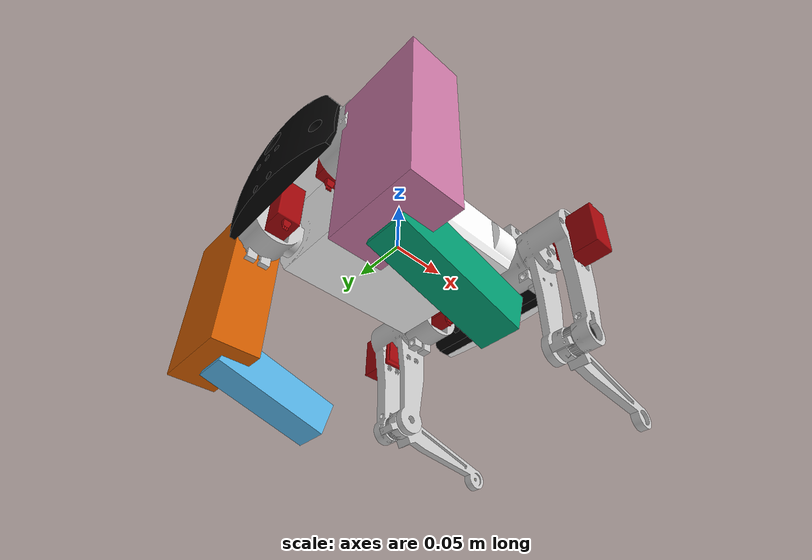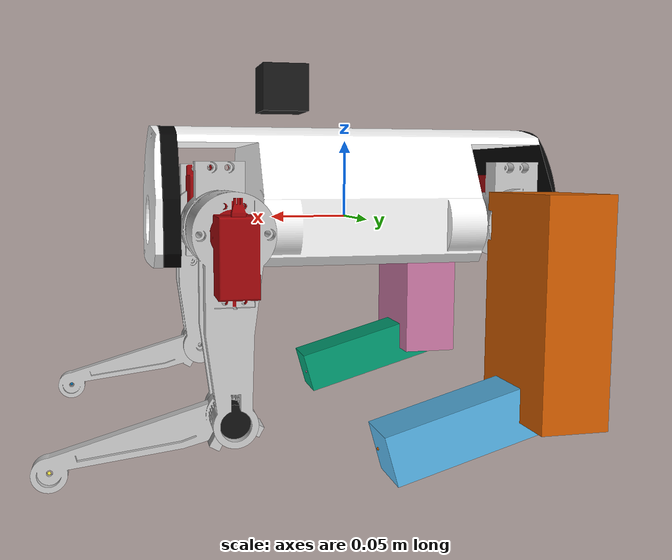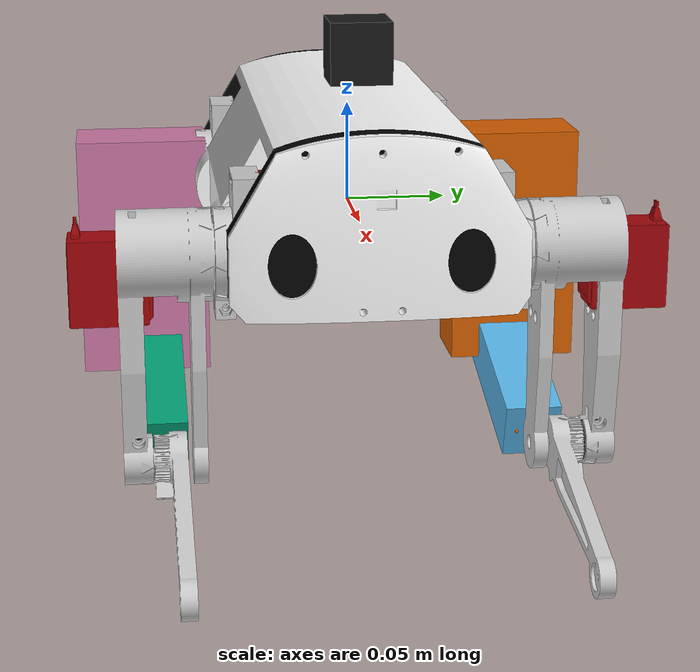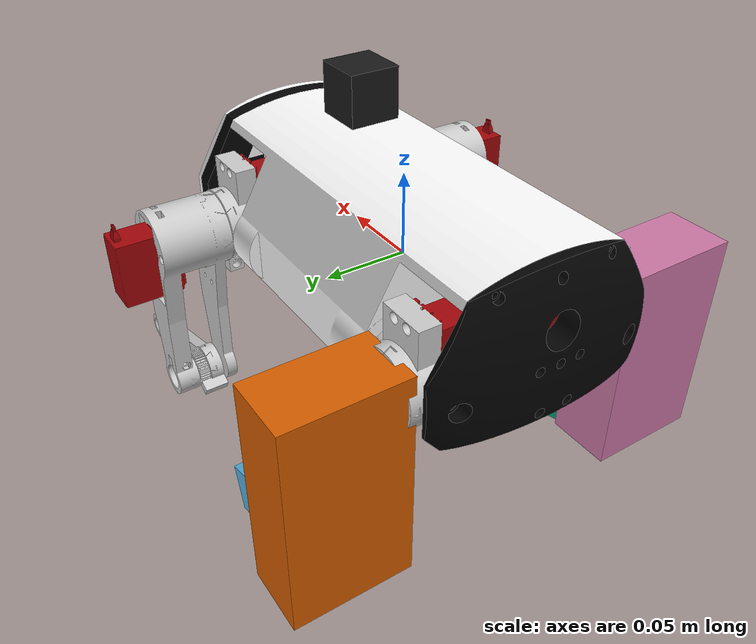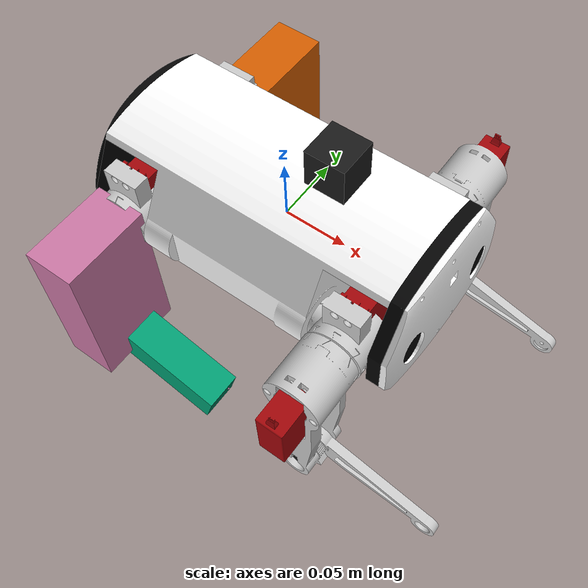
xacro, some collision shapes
<?xml version="1.0"?>

<robot name="pavlov_mini" xmlns:xacro="http://ros.org/wiki/xacro">

  <xacro:arg name="is_ignition" default="true"/>
  <!-- Simulation-only tweak: tilt camera down/up (radians). Negative looks down. -->
  <xacro:arg name="camera_sensor_pitch" default="-0.15"/>

  <xacro:include filename="$(find pavlov_description)/urdf/pavlov_mini_ros2_control.xacro" />

  <link name="base_link">
    <visual>
      <geometry>
        <mesh filename= "package://pavlov_description/meshes/base.dae"/>
      </geometry>
    </visual>
    <inertial>
      <origin xyz="-0.000492 0.000002 0.014305" rpy="0 0 0"/>
      <mass value="2.05964"/>
      <inertia
        ixx="0.00372"
        iyy="0.00868"
        izz="0.00992"
        ixy="0.0"
        ixz="0.0"
        iyz="0.0"/>
    </inertial>
    <collision>
      <origin xyz="0.000 0.000 0.015" rpy ="0.000 0.000 0.000"/>
      <geometry>
        <box size="0.260 0.160 0.090"/>
      </geometry>
    </collision>
  </link>

  <link name="camera_link">
    <visual>
      <origin xyz="0.0 0.0 0.0" rpy="0.0 0.0 0.0"/>
      <geometry>
        <box size="0.030 0.030 0.030"/>
      </geometry>
      <material name="black">
        <color rgba="0.1 0.1 0.1 1.0"/>
      </material>
    </visual>
    <inertial>
      <mass value="0.050"/>
      <inertia ixx="0.000001" ixy="0.0" ixz="0.0"
              iyy="0.000001" iyz="0.0"
              izz="0.000001"/>
    </inertial>
    <collision>
      <origin xyz="0.0 0.0 0.0" rpy="0.0 0.0 0.0"/>
      <geometry>
        <box size="0.030 0.030 0.030"/>
      </geometry>
    </collision>
  </link>

  <link name="camera_optical_frame">
    <inertial>
      <mass value="0.001"/>
      <inertia ixx="0.000001" ixy="0.0" ixz="0.0"
              iyy="0.000001" iyz="0.0"
              izz="0.000001"/>
    </inertial>
  </link>

  <link name="hip_fl_ref">
    <visual>
      <geometry>
        <box size="0.002 0.002 0.002"/>
      </geometry>
    </visual>
    <inertial>
      <origin xyz="0.000 0.000 0.000" rpy ="0.000 0.000 0.000"/>
      <mass value="0.001"/>  <!-- 0.000 yerine -->
      <inertia
        ixx="0.000001" ixy="0.00000" ixz="0.00000"
        iyy="0.000001" iyz="0.00000"
        izz="0.000001"/>
    </inertial>
    <collision>
      <origin xyz="0.000 0.000 0.000" rpy ="0.000 0.000 0.000"/>
      <geometry>
        <box size="0.002 0.002 0.002"/>
      </geometry>
    </collision>
  </link>

  <link name="hip_fr_ref">
    <visual>
      <geometry>
        <box size="0.002 0.002 0.002"/>
      </geometry>
    </visual>
    <inertial>
      <origin xyz="0.000 0.000 0.000" rpy ="0.000 0.000 0.000"/>
      <mass value="0.001"/>
      <inertia
        ixx="0.000001" ixy="0.00000" ixz="0.00000"
        iyy="0.000001" iyz="0.00000"
        izz="0.000001"/>
    </inertial>
    <collision>
      <origin xyz="0.000 0.000 0.000" rpy ="0.000 0.000 0.000"/>
      <geometry>
        <box size="0.002 0.002 0.002"/>
      </geometry>
    </collision>
  </link>

  <link name="hip_bl_ref">
    <visual>
      <geometry>
        <box size="0.002 0.002 0.002"/>
      </geometry>
    </visual>
    <inertial>
      <origin xyz="0.000 0.000 0.000" rpy ="0.000 0.000 0.000"/>
      <mass value="0.001"/>
      <inertia
        ixx="0.000001" ixy="0.00000" ixz="0.00000"
        iyy="0.000001" iyz="0.00000"
        izz="0.000001"/>
    </inertial>
    <collision>
      <origin xyz="0.000 0.000 0.000" rpy ="0.000 0.000 0.000"/>
      <geometry>
        <box size="0.002 0.002 0.002"/>
      </geometry>
    </collision>
  </link>

  <link name="hip_br_ref">
    <visual>
      <geometry>
        <box size="0.002 0.002 0.002"/>
      </geometry>
    </visual>
    <inertial>
      <origin xyz="0.000 0.000 0.000" rpy ="0.000 0.000 0.000"/>
      <mass value="0.001"/>
      <inertia
        ixx="0.000001" ixy="0.00000" ixz="0.00000"
        iyy="0.000001" iyz="0.00000"
        izz="0.000001"/>
    </inertial>
    <collision>
      <origin xyz="0.000 0.000 0.000" rpy ="0.000 0.000 0.000"/>
      <geometry>
        <box size="0.002 0.002 0.002"/>
      </geometry>
    </collision>
  </link>

  <link name="hip_fl_link">
    <visual>
      <geometry>
        <mesh filename= "package://pavlov_description/meshes/hip_fl.dae"/>
      </geometry>
    </visual>
    <inertial>
      <origin xyz="-0.002211 0.000093 0.004829" rpy="0 0 0"/>
      <mass value="0.04528"/>
      <inertia
        ixx="0.00002615"
        iyy="0.00002831"
        izz="0.00002071"
        ixy="0.0"
        ixz="0.0"
        iyz="0.0"/>
    </inertial>
    <collision>
      <origin xyz="-0.005 -0.005 0.005" rpy ="0.000 0.000 0.000"/>
      <geometry>
        <box size="0.050 0.050 0.070"/>
      </geometry>
    </collision>
  </link>

  <link name="hip_fr_link">
    <visual>
      <geometry>
        <mesh filename= "package://pavlov_description/meshes/hip_fr.dae"/>
      </geometry>
    </visual>
    <inertial>
        <origin xyz="-0.002212 -0.000095 0.004830" rpy="0 0 0"/>
        <mass value="0.04528"/>
        <inertia
          ixx="0.00002615"
          iyy="0.00002831"
          izz="0.00002071"
          ixy="0.0"
          ixz="0.0"
          iyz="0.0"/>
    </inertial>
    <collision>
      <origin xyz="-0.005 0.005 0.005" rpy ="0.000 0.000 0.000"/>
      <geometry>
        <box size="0.050 0.050 0.070"/>
      </geometry>
    </collision>
  </link>

  <link name="hip_bl_link">
    <visual>
      <geometry>
        <mesh filename= "package://pavlov_description/meshes/hip_bl.dae"/>
      </geometry>
    </visual>
    <inertial>
      <origin xyz="0.002212 0.000095 0.004830" rpy="0 0 0"/>
      <mass value="0.04528"/>
      <inertia
        ixx="0.00002615"
        iyy="0.00002831"
        izz="0.00002071"
        ixy="0.0"
        ixz="0.0"
        iyz="0.0"/>
    </inertial>
    <collision>
      <origin xyz="0.005 -0.005 0.005" rpy ="0.000 0.000 0.000"/>
      <geometry>
        <box size="0.050 0.050 0.070"/>
      </geometry>
    </collision>
  </link>

  <link name="hip_br_link">
    <visual>
      <geometry>
        <mesh filename= "package://pavlov_description/meshes/hip_br.dae"/>
      </geometry>
    </visual>
    <inertial>
      <origin xyz="0.002211 -0.000093 0.004829" rpy="0 0 0"/>
      <mass value="0.04528"/>
      <inertia
        ixx="0.00002615"
        iyy="0.00002831"
        izz="0.00002071"
        ixy="0.0"
        ixz="0.0"
        iyz="0.0"/>
    </inertial>
    <collision>
      <origin xyz="0.005 0.005 0.005" rpy ="0.000 0.000 0.000"/>
      <geometry>
        <box size="0.050 0.050 0.070"/>
      </geometry>
    </collision>
  </link>

  <link name="femur_fl_link">
    <visual>
      <geometry>
        <mesh filename= "package://pavlov_description/meshes/femur_fl.dae"/>
      </geometry>
    </visual>
    <inertial>
      <origin xyz="-0.000176 0.010059 -0.024478" rpy="0 0 0"/>
      <mass value="0.096623"/>
      <inertia
        ixx="0.00109482916"
        iyy="0.00092023806"
        izz="0.00034947930"
        ixy="0.0"
        ixz="0.0"
        iyz="0.0"/>
    </inertial>
    <collision>
      <origin xyz="0.000 0.015 -0.045" rpy ="0.000 0.000 0.000"/>
      <geometry>
        <box size="0.040 0.070 0.130"/>
      </geometry>
    </collision>
  </link>

  <link name="femur_fr_link">
    <visual>
      <geometry>
        <mesh filename= "package://pavlov_description/meshes/femur_fr.dae"/>
      </geometry>
    </visual>
    <inertial>
      <origin xyz="-0.000176 -0.010119 -0.024478" rpy="0 0 0"/>
      <mass value="0.096623"/>
      <inertia
        ixx="0.00019204"
        iyy="0.00016143"
        izz="0.00006129"
        ixy="0.0"
        ixz="0.0"
        iyz="0.0"/>
    </inertial>
    <collision>
      <origin xyz="0.000 -0.015 -0.045" rpy ="0.000 0.000 0.000"/>
      <geometry>
        <box size="0.040 0.070 0.130"/>
      </geometry>
    </collision>
  </link>

  <link name="femur_bl_link">
    <visual>
      <geometry>
        <mesh filename= "package://pavlov_description/meshes/femur_bl.dae"/>
      </geometry>
    </visual>
    <inertial>
      <origin xyz="-0.000176 0.010059 -0.024478" rpy="0 0 0"/>
      <mass value="0.096623"/>
      <inertia
        ixx="0.00109482916"
        iyy="0.00092023806"
        izz="0.00034947930"
        ixy="0.0"
        ixz="0.0"
        iyz="0.0"/>
    </inertial>
    <collision>
      <origin xyz="0.000 0.015 -0.045" rpy ="0.000 0.000 0.000"/>
      <geometry>
        <box size="0.040 0.070 0.130"/>
      </geometry>
    </collision>
  </link>

  <link name="femur_br_link">
    <visual>
      <geometry>
        <mesh filename= "package://pavlov_description/meshes/femur_br.dae"/>
      </geometry>
    </visual>
    <inertial>
      <origin xyz="-0.000176 -0.010119 -0.024478" rpy="0 0 0"/>
      <mass value="0.096623"/>
      <inertia
        ixx="0.00019204"
        iyy="0.00016143"
        izz="0.00006129"
        ixy="0.0"
        ixz="0.0"
        iyz="0.0"/>
    </inertial>
    <collision>
      <origin xyz="0.000 -0.015 -0.045" rpy ="0.000 0.000 0.000"/>
      <geometry>
        <box size="0.040 0.070 0.130"/>
      </geometry>
    </collision>
  </link>

  <link name="tibia_fl_link">
    <visual>
      <geometry>
        <mesh filename= "package://pavlov_description/meshes/tibia_fl.dae"/>
      </geometry>
    </visual>
    <inertial>
      <origin xyz="0.000 0.000 0.000" rpy ="0.000 0.000 0.000"/>
      <mass value="0.034"/>
      <inertia
        ixx="0.00159" ixy="0.00000" ixz="-0.00001"
        iyy="0.00159" iyz="0.00000"
        izz="0.00147"/>
    </inertial>
    <collision>
      <origin xyz="0.000 0.000 -0.050" rpy="0.000 0.000 0.000"/>
      <geometry>
        <box size="0.030 0.030 0.100"/>
      </geometry>
    </collision>
  </link>

  <link name="tibia_fr_link">
    <visual>
      <geometry>
        <mesh filename= "package://pavlov_description/meshes/tibia_fr.dae"/>
      </geometry>
    </visual>
    <inertial>
      <origin xyz="0.000 0.000 0.000" rpy ="0.000 0.000 0.000"/>
      <mass value="0.034"/>
      <inertia
        ixx="0.00159" ixy="0.00000" ixz="-0.00001"
        iyy="0.00159" iyz="0.00000"
        izz="0.00147"/>
    </inertial>
    <collision>
      <origin xyz="0.000 0.000 -0.050" rpy="0.000 0.000 0.000"/>
      <geometry>
        <box size="0.030 0.030 0.100"/>
      </geometry>
    </collision>
  </link>

  <link name="tibia_bl_link">
    <visual>
      <geometry>
        <mesh filename= "package://pavlov_description/meshes/tibia_bl.dae"/>
      </geometry>
    </visual>
    <inertial>
      <origin xyz="0.000 0.000 0.000" rpy ="0.000 0.000 0.000"/>
      <mass value="0.034"/>
      <inertia
        ixx="0.00159" ixy="0.00000" ixz="-0.00001"
        iyy="0.00159" iyz="0.00000"
        izz="0.00147"/>
    </inertial>
    <collision>
      <origin xyz="0.000 0.000 -0.050" rpy="0.000 0.000 0.000"/>
      <geometry>
        <box size="0.030 0.030 0.100"/>
      </geometry>
    </collision>
  </link>

  <link name="tibia_br_link">
    <visual>
      <geometry>
        <mesh filename= "package://pavlov_description/meshes/tibia_br.dae"/>
      </geometry>
    </visual>
    <inertial>
      <origin xyz="0.000 0.000 0.000" rpy ="0.000 0.000 0.000"/>
      <mass value="0.034"/>
      <inertia
        ixx="0.00159" ixy="0.00000" ixz="-0.00001"
        iyy="0.00159" iyz="0.00000"
        izz="0.00147"/>
    </inertial>
    <collision>
      <origin xyz="0.000 0.000 -0.050" rpy="0.000 0.000 0.000"/>
      <geometry>
        <box size="0.030 0.030 0.100"/>
      </geometry>
    </collision>
  </link>

  <link name="feet_fl">
    <visual>
      <geometry>
        <sphere radius="0.001"/>
      </geometry>
    </visual>
    <inertial>
      <origin xyz="0.000 0.000 0.000" rpy ="0.000 0.000 0.000"/>
      <mass value="0.010"/>
      <inertia
        ixx="0.00009" ixy="0.00000" ixz="0.00000"
        iyy="0.00009" iyz="0.00000"
        izz="0.00009"/>
    </inertial>
    <collision>
      <origin xyz="0.000 0.000 0.000" rpy ="0.000 0.000 0.000"/>
      <geometry>
        <box size="0.011 0.011 0.011"/>
      </geometry>
    </collision>
  </link>

  <link name="feet_fr">
    <visual>
      <geometry>
        <sphere radius="0.001"/>
      </geometry>
    </visual>
    <inertial>
      <origin xyz="0.000 0.000 0.000" rpy ="0.000 0.000 0.000"/>
      <mass value="0.010"/>
      <inertia
        ixx="0.00009" ixy="0.00000" ixz="0.00000"
        iyy="0.00009" iyz="0.00000"
        izz="0.00009"/>
    </inertial>
    <collision>
      <origin xyz="0.000 0.000 0.000" rpy ="0.000 0.000 0.000"/>
      <geometry>
        <box size="0.011 0.011 0.011"/>
      </geometry>
    </collision>
  </link>

  <link name="feet_bl">
    <visual>
      <geometry>
        <sphere radius="0.001"/>
      </geometry>
    </visual>
    <inertial>
      <origin xyz="0.000 0.000 0.000" rpy ="0.000 0.000 0.000"/>
      <mass value="0.010"/>
      <inertia
        ixx="0.00009" ixy="0.00000" ixz="0.00000"
        iyy="0.00009" iyz="0.00000"
        izz="0.00009"/>
    </inertial>
    <collision>
      <origin xyz="0.000 0.000 0.000" rpy ="0.000 0.000 0.000"/>
      <geometry>
        <box size="0.011 0.011 0.011"/>
      </geometry>
    </collision>
  </link>

  <link name="feet_br">
    <visual>
      <geometry>
        <sphere radius="0.001"/>
      </geometry>
    </visual>
    <inertial>
      <origin xyz="0.000 0.000 0.000" rpy ="0.000 0.000 0.000"/>
      <mass value="0.010"/>
      <inertia
        ixx="0.00009" ixy="0.00000" ixz="0.00000"
        iyy="0.00009" iyz="0.00000"
        izz="0.00009"/>
    </inertial>
    <collision>
      <origin xyz="0.000 0.000 0.000" rpy ="0.000 0.000 0.000"/>
      <geometry>
        <box size="0.011 0.011 0.011"/>
      </geometry>
    </collision>
  </link>

  <!-- JOINTS -->

  <joint name="camera_joint" type="fixed" dont_collapse="true">
    <parent link="base_link"/>
    <child link="camera_link"/>
    <origin xyz="0.04312 0.00000 0.08341" rpy="0.0 0.0 0.0"/>
  </joint>

  <joint name="camera_optical_frame_joint" type="fixed" dont_collapse="true">
    <parent link="camera_link"/>
    <child link="camera_optical_frame"/>
    <origin xyz="0.0 0.0 0.0" rpy="-1.5708 0.0 -1.5708"/>
  </joint>

  <joint name="fl_ref" type="fixed" dont_collapse="true">
    <parent link="base_link"/>
    <child  link="hip_fl_ref"/>
    <origin xyz="0.09170 0.05355 -0.00279"/>
  </joint>

  <joint name="fr_ref" type="fixed" dont_collapse="true">
    <parent link="base_link"/>
    <child  link="hip_fr_ref"/>
    <origin xyz="0.09170 -0.05355 -0.00279"/>
  </joint>

  <joint name="bl_ref" type="fixed" dont_collapse="true">
    <parent link="base_link"/>
    <child  link="hip_bl_ref"/>
    <origin xyz="-0.09170 0.05355 -0.00279"/>
  </joint>

  <joint name="br_ref" type="fixed" dont_collapse="true">
    <parent link="base_link"/>
    <child  link="hip_br_ref"/>
    <origin xyz="-0.09170 -0.05355 -0.00279"/>
  </joint>

  <joint name="hip1_fl" type="revolute">
    <axis xyz="1.000 0.000 0.000"/>
    <limit effort="80.00000" lower="-0.78540" upper="1.57080" velocity="1.04720"/>
    <parent link="hip_fl_ref"/>
    <child  link="hip_fl_link"/>
    <origin xyz="0.00000 0.00000 0.00000"/>
  </joint>

  <joint name="hip1_fr" type="revolute">
    <axis xyz="1.000 0.000 0.000"/>
    <limit effort="80.00000" lower="-0.78540" upper="1.57080" velocity="1.04720"/>
    <parent link="hip_fr_ref"/>
    <child  link="hip_fr_link"/>
    <origin xyz="0.00000 0.00000 0.00000"/>
  </joint>

  <joint name="hip1_bl" type="revolute">
    <axis xyz="1.000 0.000 0.000"/>
    <limit effort="80.00000" lower="-0.78540" upper="1.57080" velocity="1.04720"/>
    <parent link="hip_bl_ref"/>
    <child  link="hip_bl_link"/>
    <origin xyz="0.00000 0.00000 0.00000"/>
  </joint>

  <joint name="hip1_br" type="revolute">
    <axis xyz="1.000 0.000 0.000"/>
    <limit effort="80.00000" lower="-0.78540" upper="1.57080" velocity="1.04720"/>
    <parent link="hip_br_ref"/>
    <child  link="hip_br_link"/>
    <origin xyz="0.00000 0.00000 0.00000"/>
  </joint>

  <joint name="hip2_fl" type="revolute">
    <axis xyz="0.000 1.000 0.000"/>
    <limit effort="80.00000" lower="0.00000" upper="2.35619" velocity="1.04720"/>
    <parent link="hip_fl_link"/>
    <child  link="femur_fl_link"/>
    <origin xyz="0.00000 0.03559 0.00000"/>
  </joint>

  <joint name="hip2_fr" type="revolute">
    <axis xyz="0.000 1.000 0.000"/>
    <limit effort="80.00000" lower="0.00000" upper="2.35619" velocity="1.04720"/>
    <parent link="hip_fr_link"/>
    <child  link="femur_fr_link"/>
    <origin xyz="0.00000 -0.03559 0.00000"/>
  </joint>

  <joint name="hip2_bl" type="revolute">
    <axis xyz="0.000 1.000 0.000"/>
    <limit effort="80.00000" lower="0.00000" upper="2.35619" velocity="1.04720"/>
    <parent link="hip_bl_link"/>
    <child  link="femur_bl_link"/>
    <origin xyz="0.00000 0.03559 0.00000" />
  </joint>

  <joint name="hip2_br" type="revolute">
    <axis xyz="0.000 1.000 0.000"/>
    <limit effort="80.00000" lower="0.00000" upper="2.35619" velocity="1.04720"/>
    <parent link="hip_br_link"/>
    <child  link="femur_br_link"/>
    <origin xyz="0.00000 -0.03559 0.00000"/>
  </joint>

  <joint name="knee_fl" type="revolute">
    <axis xyz="0.000 1.000 0.000"/>
    <limit effort="80.00000" lower="-2.35619" upper="-0.22360" velocity="1.04720"/>
    <parent link="femur_fl_link"/>
    <child  link="tibia_fl_link"/>
    <origin xyz="0.00000 0.01071 -0.09996" rpy="0.000 0 0.000"/>
  </joint>

  <joint name="knee_fr" type="revolute">
    <axis xyz="0.000 1.000 0.000"/>
    <limit effort="80.00000" lower="-2.35619" upper="-0.22360" velocity="1.04720"/>
    <parent link="femur_fr_link"/>
    <child  link="tibia_fr_link"/>
    <origin xyz="0.00000 -0.01071 -0.09996" rpy="0.000 0 0.000"/>
  </joint>

  <joint name="knee_bl" type="revolute">
    <axis xyz="0.000 1.000 0.000"/>
    <limit effort="80.00000" lower="-2.35619" upper="-0.22360" velocity="1.04720"/>
    <parent link="femur_bl_link"/>
    <child  link="tibia_bl_link"/>
    <origin xyz="0.00000 0.01071 -0.09996" rpy="0.000 0 0.000"/>
  </joint>

  <joint name="knee_br" type="revolute">
    <axis xyz="0.000 1.000 0.000"/>
    <limit effort="80.00000" lower="-2.35619" upper="-0.22360" velocity="1.04720"/>
    <parent link="femur_br_link"/>
    <child  link="tibia_br_link"/>
    <origin xyz="0.00000 -0.01071 -0.09996" rpy="0.000 0 0.000"/>
  </joint>

  <joint name="feet_fl_ref" type="fixed" dont_collapse="true">
    <parent link="tibia_fl_link"/>
    <child  link="feet_fl"/>
    <origin xyz="0.00000 -0.00834 -0.10000"/>
  </joint>

  <joint name="feet_fr_ref" type="fixed" dont_collapse="true">
    <parent link="tibia_fr_link"/>
    <child  link="feet_fr"/>
    <origin xyz="0.00000 0.00834 -0.10000"/>
  </joint>

  <joint name="feet_bl_ref" type="fixed" dont_collapse="true">
    <parent link="tibia_bl_link"/>
    <child  link="feet_bl"/>
    <origin xyz="0.00000 -0.00834 -0.10000"/>
  </joint>

  <joint name="feet_br_ref" type="fixed" dont_collapse="true">
    <parent link="tibia_br_link"/>
    <child  link="feet_br"/>
    <origin xyz="0.00000 0.00834 -0.10000"/>
  </joint>

  <gazebo>
    <plugin filename="ign_ros2_control-system" name="ign_ros2_control::IgnitionROS2ControlPlugin">
       <parameters>$(find pavlov_control)/config/ros2_controllers.yaml</parameters>
      <robot_param>robot_description</robot_param>
      <robot_param_node>robot_state_publisher</robot_param_node>
    </plugin>
  </gazebo>

  <gazebo reference="base_link">
    <sensor name="camera_sensor" type="camera">
      <!--
        Gazebo camera looks along +X. Keep it aligned with base_link (+X forward),
        and just tilt it in pitch so it can see the ground / target.
      -->
      <pose>0.04312 0 0.08341 0 $(arg camera_sensor_pitch) 0</pose>
      <always_on>1</always_on>
      <update_rate>30</update_rate>
      <visualize>true</visualize>
      <camera>
        <horizontal_fov>1.3962634</horizontal_fov>
        <image>
          <width>640</width>
          <height>480</height>
          <format>R8G8B8</format>
        </image>
        <clip>
          <near>0.02</near>
          <far>10.0</far>
        </clip>
      </camera>
    </sensor>
  </gazebo>

</robot>
